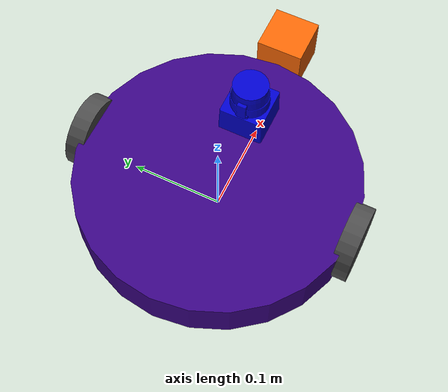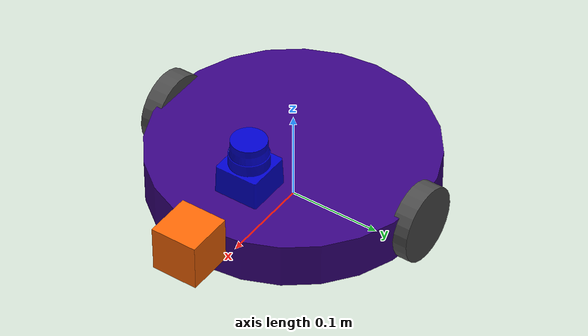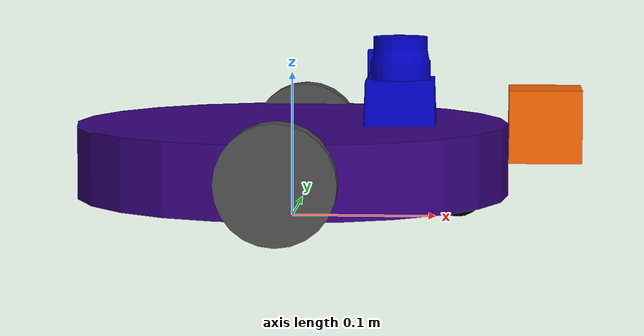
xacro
<?xml version="1.0"?>

<!-- Source:https://github.com/qboticslabs/mastering_ros/tree/master/chapter_2_codes/mastering_ros_robot_description_pkg -->

<robot name="my_robot" xmlns:xacro="http://www.ros.org/wiki/xacro">

  <xacro:include filename="$(find my_robot)/urdf/wheel.xacro" />
  <xacro:include filename="$(find my_robot)/urdf/my_robot.gazebo" />

<!-- Defining the colors used in this robot -->
  <material name="Black">
    <color rgba="0.0 0.0 0.0 1.0"/>
  </material>

  <material name="Red">
    <color rgba="0.8 0.0 0.0 1.0"/>
  </material>

  <material name="White">
    <color rgba="1.0 1.0 1.0 1.0"/>
  </material>

  <material name="Blue">
    <color rgba="0.0 0.0 0.8 1.0"/>
  </material>

  <material name="Orange">
    <color rgba="0.98 0.4 0.02 1.0"/>
  </material>

  <material name="Indigo" >
    <color rgba="0.22 0.01 0.51 1.0" />
  </material>

  <!-- PROPERTY LIST -->
  <!--All units in m-kg-s-radians unit system -->
  <xacro:property name="M_PI" value="3.1415926535897931" />
  <xacro:property name="M_PI_2" value="1.570796327" />
  <xacro:property name="DEG_TO_RAD" value="0.017453293" />

  <!-- Main body radius and height -->
  <!-- Main Body Cylinder base   -->
  <xacro:property name="base_height" value="0.05" />
  <xacro:property name="base_radius" value="0.15" />
  <xacro:property name="base_mass" value="5" /> <!-- in kg-->

  <!-- caster wheel radius and height -->
  <!-- caster wheel mass -->
  <xacro:property name="caster_f_height" value="0.04" />
  <xacro:property name="caster_f_radius" value="0.0199" />
  <xacro:property name="caster_f_mass" value="0.5" /> <!-- in kg-->

  <!-- caster wheel radius and height -->
  <!-- caster wheel mass -->
  <xacro:property name="caster_b_height" value="0.04" />
  <xacro:property name="caster_b_radius" value="0.0199" />
  <xacro:property name="caster_b_mass" value="0.5" /> <!-- in kg-->

  <!-- Wheels -->
  <xacro:property name="wheel_mass" value="2.5" /> --> <!-- in kg-->
  <xacro:property name="base_x_origin_to_wheel_origin" value="0.25" />
  <xacro:property name="base_y_origin_to_wheel_origin" value="0.3" />
  <xacro:property name="base_z_origin_to_wheel_origin" value="0.0" />

  <!-- Hokuyo Laser scanner -->
  <xacro:property name="hokuyo_size" value="0.08" />

  <!-- Camera -->
  <xacro:property name="camera_size" value="0.05" />
  <gazebo reference="camera">
    <material>Gazebo/Orange</material>
  </gazebo>

  <!-- Macro for calculating inertia of cylinder -->
  <xacro:macro name="cylinder_inertia" params="m r h">
    <inertia  ixx="${m*(3*r*r+h*h)/12}" ixy = "0" ixz = "0"
              iyy="${m*(3*r*r+h*h)/12}" iyz = "0"
              izz="${m*r*r/2}" />
  </xacro:macro>

  <!-- BASE-FOOTPRINT -->
  <!-- robot_footprint is a fictitious link(frame) that is on the ground right below chassis origin -->
  <link name="robot_footprint">
    <visual>
        <origin xyz="0 0 0" rpy="0 0 0" />
        <geometry>
            <box size="0.001 0.001 0.001" />
        </geometry>
    </visual>
  </link>

  <gazebo reference="robot_footprint">
    <turnGravityOff>false</turnGravityOff>
  </gazebo>

  <joint name="robot_footprint_joint" type="fixed">
    <origin xyz="0 0 ${wheel_radius - base_z_origin_to_wheel_origin}" rpy="0 0 0" />
    <parent link="robot_footprint"/>
    <child link="chassis" />
  </joint>

  <!-- BASE-LINK -->
  <!--Actual body/chassis of the robot-->
  <link name="chassis">
    <inertial>
      <mass value="${base_mass}" />
      <origin xyz="0 0 0" />
      <!--The 3x3 rotational inertia matrix. -->
        <cylinder_inertia  m="${base_mass}" r="${base_radius}" h="${base_height}" />
    </inertial>
    <visual>
      <origin xyz="0 0 0" rpy="0 0 0" />
      <geometry>
          <cylinder length="${base_height}" radius="${base_radius}" />
      </geometry>
      <material name="Indigo" />
    </visual>
    <collision>
      <origin xyz="0 0 0" rpy="0 0 0 " />
      <geometry>
          <cylinder length="${base_height}" radius="${base_radius}" />
      </geometry>
    </collision>
  </link>
  <gazebo reference="chassis">
    <material>Gazebo/Indigo</material>
    <turnGravityOff>false</turnGravityOff>
  </gazebo>

<!--Caster front  -->
  <link name="caster_front_link">
    <visual>
      <origin xyz="0 0.02 0" rpy="${M_PI/2} 0 0" />
      <geometry>
	      <sphere radius="${caster_f_radius}" />
      </geometry>
      <material name="Black" />
    </visual>
    <collision>
      <geometry>
	      <sphere radius="${caster_f_radius}" />
      </geometry>
    <origin xyz="0 0.02 0" rpy="${M_PI/2} 0 0" />
    </collision>
    <inertial>
      <mass value="${caster_f_mass}" />
      <origin xyz="0 0 0" />
      <inertia ixx="0.001" ixy="0.0" ixz="0.0"
               iyy="0.001" iyz="0.0"
               izz="0.001" />
    </inertial>
  </link>

 <joint name="caster_front_joint" type="fixed">
      <parent link="chassis"/>
      <child link="caster_front_link"/>
      <origin xyz="0.115 0.0 0.00" rpy="${-M_PI/2} 0 0"/>
  </joint>

  <gazebo reference="caster_front_link">
    <turnGravityOff>false</turnGravityOff>
  </gazebo>

<!--Caster back  -->

  <link name="caster_back_link">

    <visual>
      <origin xyz="0.02 0.02 0" rpy="${M_PI/2} 0 0" />
      <geometry>
	      <sphere radius="${caster_b_radius}" />
      </geometry>
      <material name="Black" />
    </visual>
    <collision>
      <geometry>
		    <sphere radius="${caster_b_radius}" />
      </geometry>
    <origin xyz="0.02 0.02 0" rpy="${M_PI/2} 0 0" />
    </collision>
    <inertial>
      <mass value="${caster_b_mass}" />
      <origin xyz="0 0 0" />
      <inertia ixx="0.001" ixy="0.0" ixz="0.0"
               iyy="0.001" iyz="0.0"
               izz="0.001" />
    </inertial>
  </link>

  <joint name="caster_back_joint" type="fixed">
    <parent link="chassis"/>
    <child link="caster_back_link"/>
    <origin xyz="-0.135 0.0 0.00" rpy="${-M_PI/2} 0 0"/>
  </joint>

  <gazebo reference="caster_back_link">
    <turnGravityOff>false</turnGravityOff>
  </gazebo>

<!-- Wheel Definitions -->

  <wheel fb="front" lr="right" parent="chassis" translateX="0" translateY="0.5" flipY="1"/>
  <wheel fb="front" lr="left" parent="chassis" translateX="0" translateY="-0.5" flipY="1"/>

  <!-- SENSORS -->

  <!-- hokuyo -->

  <link name="hokuyo">
    <inertial>
      <mass value="1e-5"/>
      <origin xyz="0.0 0 0" rpy="0 0 0"/>
      <inertia
      	ixx="1e-6" ixy="0.0" ixz="0.0"
      	iyy="1e-6" iyz="0.0" izz="1e-6"
      />
    </inertial>
    <collision name='hokuyo_collision'>
      <origin xyz="0 0 0" rpy="0 0 0"/>
      <geometry>
        <!--box size="${hokuyo_size} ${hokuyo_size} ${hokuyo_size}"/-->
        <mesh filename="package://my_robot/meshes/hokuyo.dae"/>
      </geometry>
    </collision>
    <visual name='hokuyo_visual'>
      <origin xyz="0 0 0" rpy="0 0 0" />
      <geometry>
        <!--box size="${hokuyo_size} ${hokuyo_size} ${hokuyo_size}"/-->
        <mesh filename="package://my_robot/meshes/hokuyo.dae"/>
      </geometry>
      <material name="Blue" />
    </visual>
  </link>

  <joint name="hokuyo_joint" type="fixed">
    <origin xyz="${base_radius/2} 0 ${base_height}" rpy="0 0 0" />
    <parent link="chassis"/>
    <child link="hokuyo" />
  </joint>

  <gazebo reference="hokuyo">
    <material>Gazebo/Blue</material>
  </gazebo>

  <!-- camera -->
  <joint name="camera_joint" type="fixed">
    <origin xyz="${base_radius + camera_size/2} 0 ${base_height/2}" rpy="0 0 0"/>
    <parent link="chassis"/>
    <child link="camera" />
    <axis xyz="0 1 0" rpy="0 0 0"/>
  </joint>

  <link name= "camera">
  	<inertial>
      <mass value="0.1"/>
      <origin xyz="0 0 0" rpy="0 0 0"/>
      <inertia
      	ixx="1e-6" ixy="0.0" ixz="0.0"
      	iyy="1e-6" iyz="0.0" izz="1e-6"
      />
    </inertial>
    <collision name='camera_collision'>
      <origin xyz="0 0 0" rpy="0 0 0"/>
      <geometry>
        <box size="${camera_size} ${camera_size} ${camera_size}"/>
      </geometry>
    </collision>
    <visual name='camera_visual'>
      <origin xyz="0 0 0" rpy="0 0 0"/>
      <geometry>
        <box size="${camera_size} ${camera_size} ${camera_size}"/>
      </geometry>
      <material name="Orange" />
    </visual>
  </link>

</robot>

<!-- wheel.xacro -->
<!-- Source:https://github.com/qboticslabs/mastering_ros/tree/master/chapter_2_codes/mastering_ros_robot_description_pkg -->

<robot name="wheel" xmlns:xacro="http://www.ros.org/wiki/xacro">

  <!-- Wheels -->
  <xacro:property name="wheel_radius" value="0.04" />
  <xacro:property name="wheel_height" value="0.02" />
  <xacro:property name="wheel_mass" value="2.5" /> <!-- in kg-->

  <xacro:property name="base_x_origin_to_wheel_origin" value="0.25" />
  <xacro:property name="base_y_origin_to_wheel_origin" value="0.3" />
  <xacro:property name="base_z_origin_to_wheel_origin" value="0.0" />

  <xacro:macro name="cylinder_inertia" params="m r h">
    <inertia  ixx="${m*(3*r*r+h*h)/12}" ixy = "0" ixz = "0"
              iyy="${m*(3*r*r+h*h)/12}" iyz = "0"
              izz="${m*r*r/2}" />
  </xacro:macro>

  <xacro:macro name="wheel" params="fb lr parent translateX translateY flipY"> <!--fb : front, back ; lr: left, right -->
    <link name="${fb}_${lr}_wheel">
      <visual>
        <origin xyz="0 0 0" rpy="${flipY*M_PI/2} 0  0 " />
        <geometry>
          <cylinder length="${wheel_height}" radius="${wheel_radius}" />
        </geometry>
        <material name="DarkGray" />
      </visual>
      <collision>
        <origin xyz="0 0 0" rpy="${flipY*M_PI/2} 0 0 " />
        <geometry>
          <cylinder length="${wheel_height}" radius="${wheel_radius}" />
        </geometry>
      </collision>
      <inertial>
        <mass value="${wheel_mass}" />
        <origin xyz="0 0 0" />
        <cylinder_inertia  m="${wheel_mass}" r="${wheel_radius}" h="${wheel_height}" />
      </inertial>
    </link>

    <gazebo reference="${fb}_${lr}_wheel">
      <mu1 value="1.0"/>
      <mu2 value="1.0"/>
      <kp  value="1000000.0" />
      <kd  value="1.0" />
      <fdir1 value="1 0 0"/>
      <material>Gazebo/Grey</material>
      <turnGravityOff>false</turnGravityOff>
    </gazebo>

    <joint name="${fb}_${lr}_wheel_joint" type="continuous">
      <parent link="${parent}"/>
      <child link="${fb}_${lr}_wheel"/>
      <origin xyz="${translateX * base_x_origin_to_wheel_origin} ${translateY * base_y_origin_to_wheel_origin} ${base_z_origin_to_wheel_origin}" rpy="0 0 0" />
      <axis xyz="0 1 0" rpy="0  0" />
      <limit effort="10000" velocity="1000"/>
      <joint_properties damping="1.0" friction="1.0"/>
    </joint>

    <!-- Transmission is important to link the joints and the controller -->
    <transmission name="${fb}_${lr}_wheel_joint_trans">
      <type>transmission_interface/SimpleTransmission</type>
      <joint name="${fb}_${lr}_wheel_joint" />
      <actuator name="${fb}_${lr}_wheel_joint_motor">
        <hardwareInterface>EffortJointInterface</hardwareInterface>
        <mechanicalReduction>1</mechanicalReduction>
      </actuator>
    </transmission >

  </xacro:macro>
</robot>

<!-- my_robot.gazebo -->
<!-- Source:https://github.com/qboticslabs/mastering_ros/tree/master/chapter_2_codes/mastering_ros_robot_description_pkg -->

<robot xmlns:xacro="http://www.ros.org/wiki/xacro">

  <xacro:property name="wheel_radius" value="0.04" />
  <xacro:property name="base_radius" value="0.15" />
  <!-- SENSORS -->

  <!-- hokuyo -->
  <gazebo reference="hokuyo">
    <material>Gazebo/Blue</material>
    <turnGravityOff>false</turnGravityOff>
    <sensor type="ray" name="head_hokuyo_sensor">
      <pose>${base_radius/2} 0 0 0 0 0</pose>
      <visualize>false</visualize>
      <update_rate>40</update_rate>
      <ray>
        <scan>
          <horizontal>
            <samples>720</samples>
            <resolution>1</resolution>
            <min_angle>-1.570796</min_angle>
            <max_angle>1.570796</max_angle>
          </horizontal>
        </scan>
        <range>
          <min>0.10</min>
          <max>30.0</max>
          <resolution>0.01</resolution>
        </range>
        <noise>
          <type>gaussian</type>
          <mean>0.0</mean>
          <stddev>0.01</stddev>
        </noise>
      </ray>
      <plugin name="gazebo_ros_head_hokuyo_controller" filename="libgazebo_ros_laser.so">
        <topicName>/scan</topicName>
        <frameName>hokuyo</frameName>
      </plugin>
    </sensor>
  </gazebo>

  <!-- camera -->
   <gazebo reference="camera">
    <material>Gazebo/Orange</material>
    <sensor type="camera" name="camera1">
      <update_rate>30.0</update_rate>
      <camera name="head">
        <horizontal_fov>1.3962634</horizontal_fov>
        <image>
          <width>800</width>
          <height>800</height>
          <format>R8G8B8</format>
        </image>
        <clip>
          <near>0.02</near>
          <far>300</far>
        </clip>
      </camera>
      <plugin name="camera_controller" filename="libgazebo_ros_camera.so">
        <alwaysOn>true</alwaysOn>
        <updateRate>0.0</updateRate>
        <cameraName>camera1</cameraName>
        <imageTopicName>rgb/image_raw</imageTopicName>
        <cameraInfoTopicName>rgb/camera_info</cameraInfoTopicName>
        <frameName>camera</frameName>
        <hackBaseline>0.07</hackBaseline>
        <distortionK1>0.0</distortionK1>
        <distortionK2>0.0</distortionK2>
        <distortionK3>0.0</distortionK3>
        <distortionT1>0.0</distortionT1>
        <distortionT2>0.0</distortionT2>
      </plugin>
    </sensor>
  </gazebo>

  <!-- Differential drive controller  -->
  <gazebo>
    <plugin name="differential_drive_controller" filename="libgazebo_ros_diff_drive.so">
      <legacyMode>false</legacyMode>
      <rosDebugLevel>na</rosDebugLevel>
      <publishWheelTF>false</publishWheelTF>
      <publishTf>1</publishTf>
      <publishWheelJointState>false</publishWheelJointState>
      <alwaysOn>true</alwaysOn>
      <updateRate>10</updateRate>
      <leftJoint>front_left_wheel_joint</leftJoint>
      <rightJoint>front_right_wheel_joint</rightJoint>
      <wheelSeparation>${2*base_radius}</wheelSeparation>
      <wheelDiameter>${2*wheel_radius}</wheelDiameter>
      <broadcastTF>1</broadcastTF>
      <torque>10</torque>
      <wheelTorque>5</wheelTorque>
      <wheelAcceleration>0</wheelAcceleration>
      <commandTopic>cmd_vel</commandTopic>
      <odometryFrame>odom</odometryFrame>
      <odometryTopic>odom</odometryTopic>
      <robotBaseFrame>robot_footprint</robotBaseFrame>
      <odometrySource>world</odometrySource>
      <publishOdomTF>true</publishOdomTF>
    </plugin>
  </gazebo>

</robot>
